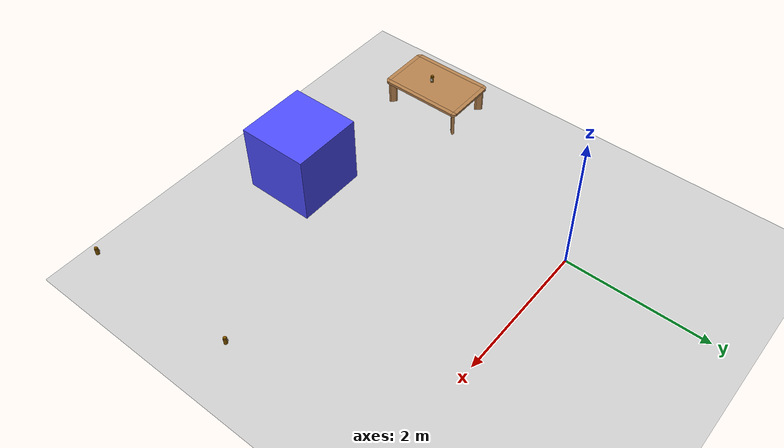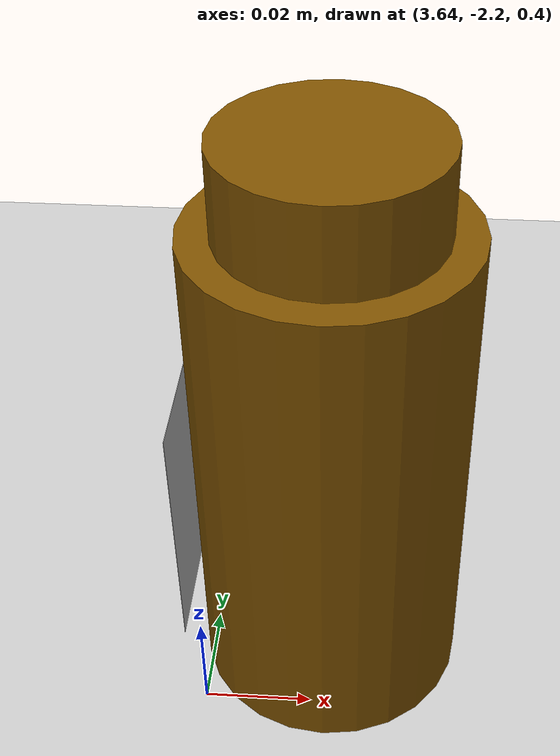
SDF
<sdf version="1.6">
 <world name="default">
  <model name="ground_plane">
   <static>1</static>
   <link name="link">
    <collision name="collision">
     <geometry><plane><normal>0 0 1</normal><size>100 100</size></plane></geometry>
     <surface><friction><ode><mu>100</mu><mu2>50</mu2></ode></friction></surface>
    </collision>
    <visual name="visual">
     <cast_shadows>0</cast_shadows>
     <geometry><plane><normal>0 0 1</normal><size>100 100</size></plane></geometry>
     <material>
      <script><uri>file://media/materials/scripts/gazebo.material</uri><name>Gazebo/Grey</name></script>
     </material>
    </visual>
   </link>
  </model>
  <model name="static_box_3">
   <link name="link">
    <inertial>
     <mass>100</mass>
     <inertia>
      <ixx>0.166667</ixx>
      <ixy>0</ixy>
      <ixz>0</ixz>
      <iyy>0.166667</iyy>
      <iyz>0</iyz>
      <izz>0.166667</izz>
     </inertia>
    </inertial>
    <visual name="visual">
     <geometry><box><size>1 1 1</size></box></geometry>
     <material>
      <script><name>Gazebo/Grey</name><uri>file://media/materials/scripts/gazebo.material</uri></script>
      <ambient>0.3 0.3 1 1</ambient>
      <diffuse>0.7 0.7 0.7 1</diffuse>
      <specular>0.01 0.01 0.01 1</specular>
      <emissive>0 0 0 1</emissive>
      <shader type="vertex"><normal_map>__default__</normal_map></shader>
     </material>
    </visual>
    <collision name="collision">
     <geometry><box><size>1 1 1</size></box></geometry>
     <surface>
      <friction>
       <ode><mu>1</mu><mu2>1</mu2><fdir1>0 0 0</fdir1><slip1>0</slip1><slip2>0</slip2></ode>
       <torsional>
        <coefficient>1</coefficient>
        <patch_radius>0</patch_radius>
        <surface_radius>0</surface_radius>
        <use_patch_radius>1</use_patch_radius>
        <ode><slip>0</slip></ode>
       </torsional>
      </friction>
      <bounce><restitution_coefficient>0</restitution_coefficient><threshold>1e+06</threshold></bounce>
      <contact>
       <collide_without_contact>0</collide_without_contact>
       <collide_without_contact_bitmask>1</collide_without_contact_bitmask>
       <collide_bitmask>1</collide_bitmask>
       <ode>
        <soft_cfm>0</soft_cfm>
        <soft_erp>0.2</soft_erp>
        <kp>1e+13</kp>
        <kd>1</kd>
        <max_vel>0.01</max_vel>
        <min_depth>0</min_depth>
       </ode>
       <bullet>
        <split_impulse>1</split_impulse>
        <split_impulse_penetration_threshold>-0.01</split_impulse_penetration_threshold>
        <soft_cfm>0</soft_cfm>
        <soft_erp>0.2</soft_erp>
        <kp>1e+13</kp>
        <kd>1</kd>
       </bullet>
      </contact>
     </surface>
    </collision>
   </link>
   <static>0</static>
   <pose>1.00471 -3.5172 0.499993 0 -1.2e-05 0.000648</pose>
  </model>
  <model name="kitchen_lowtable_clone_8">
   <link name="link">
    <inertial>
     <mass>10</mass>
     <inertia><ixx>1</ixx><ixy>0</ixy><ixz>0</ixz><iyy>1</iyy><iyz>0</iyz><izz>1</izz></inertia>
    </inertial>
    <visual name="center_board">
     <pose>0 0 0.38 0 -0 0</pose>
     <geometry><box><size>0.68 1.13 0.04</size></box></geometry>
     <material>
      <script><uri>model://base_materials/wood/scripts/wood.material</uri><name>base_materials/wood</name></script>
     </material>
    </visual>
    <collision name="collision_center_board">
     <pose>0 0 0.38 0 -0 0</pose>
     <geometry><box><size>0.68 1.13 0.04</size></box></geometry>
    </collision>
    <visual name="front_board">
     <pose>0.37 0 0.38 0 -0 0</pose>
     <geometry><box><size>0.06 1.13 0.04</size></box></geometry>
     <material>
      <script><uri>model://base_materials/wood/scripts/wood.material</uri><name>base_materials/wood</name></script>
     </material>
    </visual>
    <collision name="collision_front_board">
     <pose>0.37 0 0.38 0 -0 0</pose>
     <geometry><box><size>0.06 1.13 0.04</size></box></geometry>
    </collision>
    <visual name="back_board">
     <pose>-0.37 0 0.38 0 -0 0</pose>
     <geometry><box><size>0.06 1.13 0.04</size></box></geometry>
     <material>
      <script><uri>model://base_materials/wood/scripts/wood.material</uri><name>base_materials/wood</name></script>
     </material>
    </visual>
    <collision name="collision_back_board">
     <pose>-0.37 0 0.38 0 -0 0</pose>
     <geometry><box><size>0.06 1.13 0.04</size></box></geometry>
    </collision>
    <visual name="right_board">
     <pose>0 0.595 0.38 0 -0 0</pose>
     <geometry><box><size>0.68 0.06 0.04</size></box></geometry>
     <material>
      <script><uri>model://base_materials/wood/scripts/wood.material</uri><name>base_materials/wood</name></script>
     </material>
    </visual>
    <collision name="collision_right_board">
     <pose>0 0.595 0.38 0 -0 0</pose>
     <geometry><box><size>0.68 0.06 0.04</size></box></geometry>
    </collision>
    <visual name="left_board">
     <pose>0 -0.595 0.38 0 -0 0</pose>
     <geometry><box><size>0.68 0.06 0.04</size></box></geometry>
     <material>
      <script><uri>model://base_materials/wood/scripts/wood.material</uri><name>base_materials/wood</name></script>
     </material>
    </visual>
    <collision name="collision_left_board">
     <pose>0 -0.595 0.38 0 -0 0</pose>
     <geometry><box><size>0.68 0.06 0.04</size></box></geometry>
    </collision>
    <visual name="front_right_corner_board">
     <pose>0.34 0.565 0.38 0 -0 0</pose>
     <geometry><cylinder><radius>0.06</radius><length>0.039</length></cylinder></geometry>
     <material>
      <script><uri>model://base_materials/wood/scripts/wood.material</uri><name>base_materials/wood</name></script>
     </material>
    </visual>
    <collision name="collision_front_right_corner_board">
     <pose>0.34 0.565 0.38 0 -0 0</pose>
     <geometry><cylinder><radius>0.06</radius><length>0.039</length></cylinder></geometry>
    </collision>
    <visual name="front_left_corner_board">
     <pose>0.34 -0.565 0.38 0 -0 0</pose>
     <geometry><cylinder><radius>0.06</radius><length>0.039</length></cylinder></geometry>
     <material>
      <script><uri>model://base_materials/wood/scripts/wood.material</uri><name>base_materials/wood</name></script>
     </material>
    </visual>
    <collision name="collision_front_left_corner_board">
     <pose>0.34 -0.565 0.38 0 -0 0</pose>
     <geometry><cylinder><radius>0.06</radius><length>0.039</length></cylinder></geometry>
    </collision>
    <visual name="front_back_right_corner_board">
     <pose>-0.34 0.565 0.38 0 -0 0</pose>
     <geometry><cylinder><radius>0.06</radius><length>0.039</length></cylinder></geometry>
     <material>
      <script><uri>model://base_materials/wood/scripts/wood.material</uri><name>base_materials/wood</name></script>
     </material>
    </visual>
    <collision name="collision_back_right_corner_board">
     <pose>-0.34 0.565 0.38 0 -0 0</pose>
     <geometry><cylinder><radius>0.06</radius><length>0.039</length></cylinder></geometry>
    </collision>
    <visual name="front_back_left_corner_board">
     <pose>-0.34 -0.565 0.38 0 -0 0</pose>
     <geometry><cylinder><radius>0.06</radius><length>0.039</length></cylinder></geometry>
     <material>
      <script><uri>model://base_materials/wood/scripts/wood.material</uri><name>base_materials/wood</name></script>
     </material>
    </visual>
    <collision name="collision_back_left_corner_board">
     <pose>-0.34 -0.565 0.38 0 -0 0</pose>
     <geometry><cylinder><radius>0.06</radius><length>0.039</length></cylinder></geometry>
    </collision>
    <visual name="front_left_corner_frame1">
     <pose>0.345858 -0.57086 0.18 0 -0 0</pose>
     <geometry><cylinder><radius>0.02</radius><length>0.36</length></cylinder></geometry>
     <material>
      <script><uri>model://base_materials/wood/scripts/wood.material</uri><name>base_materials/wood</name></script>
     </material>
    </visual>
    <collision name="collision_front_left_corner_frame1">
     <pose>0.345858 -0.57086 0.18 0 -0 0</pose>
     <geometry><cylinder><radius>0.02</radius><length>0.36</length></cylinder></geometry>
    </collision>
    <visual name="front_left_corner_frame2">
     <pose>0.317574 -0.54257 0.18 0 -0 0.7854</pose>
     <geometry><box><size>0.04 0.08 0.36</size></box></geometry>
     <material>
      <script><uri>model://base_materials/wood/scripts/wood.material</uri><name>base_materials/wood</name></script>
     </material>
    </visual>
    <collision name="collision_front_left_corner_frame2">
     <pose>0.317574 -0.54257 0.18 0 -0 0.7854</pose>
     <geometry><box><size>0.04 0.08 0.36</size></box></geometry>
    </collision>
    <visual name="front_left_corner_frame3">
     <pose>0.289289 -0.51429 0.18 0 -0 0</pose>
     <geometry><cylinder><radius>0.02</radius><length>0.36</length></cylinder></geometry>
     <material>
      <script><uri>model://base_materials/wood/scripts/wood.material</uri><name>base_materials/wood</name></script>
     </material>
    </visual>
    <collision name="collision_front_left_corner_frame3">
     <pose>0.289289 -0.51429 0.18 0 -0 0</pose>
     <geometry><cylinder><radius>0.02</radius><length>0.36</length></cylinder></geometry>
    </collision>
    <visual name="front_right_corner_frame1">
     <pose>0.345858 0.57086 0.18 0 -0 0</pose>
     <geometry><cylinder><radius>0.02</radius><length>0.36</length></cylinder></geometry>
     <material>
      <script><uri>model://base_materials/wood/scripts/wood.material</uri><name>base_materials/wood</name></script>
     </material>
    </visual>
    <collision name="collision_front_right_corner_frame1">
     <pose>0.345858 0.57086 0.18 0 -0 0</pose>
     <geometry><cylinder><radius>0.02</radius><length>0.36</length></cylinder></geometry>
    </collision>
    <visual name="front_right_corner_frame2">
     <pose>0.317574 0.54257 0.18 0 0 -0.7854</pose>
     <geometry><box><size>0.04 0.08 0.36</size></box></geometry>
     <material>
      <script><uri>model://base_materials/wood/scripts/wood.material</uri><name>base_materials/wood</name></script>
     </material>
    </visual>
    <collision name="collision_front_right_corner_frame2">
     <pose>0.317574 0.54257 0.18 0 0 -0.7854</pose>
     <geometry><box><size>0.04 0.08 0.36</size></box></geometry>
    </collision>
    <visual name="front_right_corner_frame3">
     <pose>0.289289 0.51429 0.18 0 -0 0</pose>
     <geometry><cylinder><radius>0.02</radius><length>0.36</length></cylinder></geometry>
     <material>
      <script><uri>model://base_materials/wood/scripts/wood.material</uri><name>base_materials/wood</name></script>
     </material>
    </visual>
    <collision name="collision_front_right_corner_frame3">
     <pose>0.289289 0.51429 0.18 0 -0 0</pose>
     <geometry><cylinder><radius>0.02</radius><length>0.36</length></cylinder></geometry>
    </collision>
    <visual name="back_left_corner_frame1">
     <pose>-0.345858 -0.57086 0.18 0 -0 0</pose>
     <geometry><cylinder><radius>0.02</radius><length>0.36</length></cylinder></geometry>
     <material>
      <script><uri>model://base_materials/wood/scripts/wood.material</uri><name>base_materials/wood</name></script>
     </material>
    </visual>
    <collision name="collision_back_left_corner_frame1">
     <pose>-0.345858 -0.57086 0.18 0 -0 0</pose>
     <geometry><cylinder><radius>0.02</radius><length>0.36</length></cylinder></geometry>
    </collision>
    <visual name="back_left_corner_frame2">
     <pose>-0.317574 -0.54257 0.18 0 0 -0.7854</pose>
     <geometry><box><size>0.04 0.08 0.36</size></box></geometry>
     <material>
      <script><uri>model://base_materials/wood/scripts/wood.material</uri><name>base_materials/wood</name></script>
     </material>
    </visual>
    <collision name="collision_back_left_corner_frame2">
     <pose>-0.317574 -0.54257 0.18 0 0 -0.7854</pose>
     <geometry><box><size>0.04 0.08 0.36</size></box></geometry>
    </collision>
    <visual name="back_left_corner_frame3">
     <pose>-0.289289 -0.51429 0.18 0 -0 0</pose>
     <geometry><cylinder><radius>0.02</radius><length>0.36</length></cylinder></geometry>
     <material>
      <script><uri>model://base_materials/wood/scripts/wood.material</uri><name>base_materials/wood</name></script>
     </material>
    </visual>
    <collision name="collision_back_left_corner_frame3">
     <pose>-0.289289 -0.51429 0.18 0 -0 0</pose>
     <geometry><cylinder><radius>0.02</radius><length>0.36</length></cylinder></geometry>
    </collision>
    <visual name="back_right_corner_frame1">
     <pose>-0.345858 0.57086 0.18 0 -0 0</pose>
     <geometry><cylinder><radius>0.02</radius><length>0.36</length></cylinder></geometry>
     <material>
      <script><uri>model://base_materials/wood/scripts/wood.material</uri><name>base_materials/wood</name></script>
     </material>
    </visual>
    <collision name="collision_back_right_corner_frame1">
     <pose>-0.345858 0.57086 0.18 0 -0 0</pose>
     <geometry><cylinder><radius>0.02</radius><length>0.36</length></cylinder></geometry>
    </collision>
    <visual name="back_right_corner_frame2">
     <pose>-0.317574 0.54257 0.18 0 -0 0.7854</pose>
     <geometry><box><size>0.04 0.08 0.36</size></box></geometry>
     <material>
      <script><uri>model://base_materials/wood/scripts/wood.material</uri><name>base_materials/wood</name></script>
     </material>
    </visual>
    <collision name="collision_back_right_corner_frame2">
     <pose>-0.317574 0.54257 0.18 0 -0 0.7854</pose>
     <geometry><box><size>0.04 0.08 0.36</size></box></geometry>
    </collision>
    <visual name="back_right_corner_frame3">
     <pose>-0.289289 0.51429 0.18 0 -0 0</pose>
     <geometry><cylinder><radius>0.02</radius><length>0.36</length></cylinder></geometry>
     <material>
      <script><uri>model://base_materials/wood/scripts/wood.material</uri><name>base_materials/wood</name></script>
     </material>
    </visual>
    <collision name="collision_back_right_corner_frame3">
     <pose>-0.289289 0.51429 0.18 0 -0 0</pose>
     <geometry><cylinder><radius>0.02</radius><length>0.36</length></cylinder></geometry>
    </collision>
    <velocity_decay><linear>0</linear><angular>0</angular></velocity_decay>
   </link>
   <static>1</static>
   <pose>-1.33255 -3.07877 0 0 -0 0</pose>
  </model>
  <model name="bottle_clone_2_clone_0">
   <link name="link">
    <inertial>
     <mass>0.05</mass>
     <inertia><ixx>0.00058</ixx><ixy>0</ixy><ixz>0</ixz><iyy>0.00058</iyy><iyz>0</iyz><izz>0.00016</izz></inertia>
    </inertial>
    <visual name="top">
     <pose>0 0 0.0555 0 -0 0</pose>
     <geometry><cylinder><radius>0.019</radius><length>0.016</length></cylinder></geometry>
     <material>
      <ambient>1 0.647 0 1</ambient>
      <diffuse>0.5 0.3235 0 1</diffuse>
      <specular>0.1 0.1 0.1 1</specular>
      <emissive>0 0 0 0</emissive>
     </material>
    </visual>
    <collision name="collision_top">
     <pose>0 0 0.0555 0 -0 0</pose>
     <geometry><cylinder><radius>0.019</radius><length>0.016</length></cylinder></geometry>
     <surface>
      <bounce><restitution_coefficient>0.2</restitution_coefficient><threshold>0</threshold></bounce>
      <contact><ode><kp>10000</kp><max_vel>10</max_vel></ode></contact>
     </surface>
    </collision>
    <visual name="bottom">
     <geometry><cylinder><radius>0.0245</radius><length>0.095</length></cylinder></geometry>
     <material>
      <ambient>1 0.7 0.3 1</ambient>
      <diffuse>0.5 0.3235 0 1</diffuse>
      <specular>0.1 0.1 0.1 1</specular>
      <emissive>0 0 0 0</emissive>
     </material>
    </visual>
    <collision name="collision_bottom">
     <geometry><cylinder><radius>0.0245</radius><length>0.095</length></cylinder></geometry>
     <surface>
      <bounce><restitution_coefficient>0.2</restitution_coefficient><threshold>0</threshold></bounce>
      <contact><ode><kp>100000</kp><max_vel>10</max_vel></ode></contact>
     </surface>
    </collision>
    <velocity_decay><linear>0</linear><angular>0</angular></velocity_decay>
    <visual name="marker_4000">
     <pose>0.0245 0 0 0 1.57 3.141</pose>
     <geometry><box><size>0.045 0.045 0.0001</size></box></geometry>
     <material>
      <script>
       <uri>model://marker/4000/scripts</uri>
       <uri>model://marker/4000/textures</uri>
       <name>Marker/4000</name>
      </script>
     </material>
    </visual>
   </link>
   <static>0</static>
   <pose>-1.33067 -3.15166 0.4475 5e-06 -6e-06 0.03372</pose>
  </model>
  <model name="bottle_clone_2_clone_2_clone">
   <link name="link">
    <inertial>
     <mass>0.05</mass>
     <inertia><ixx>0.00058</ixx><ixy>0</ixy><ixz>0</ixz><iyy>0.00058</iyy><iyz>0</iyz><izz>0.00016</izz></inertia>
    </inertial>
    <visual name="top">
     <pose>0 0 0.0555 0 -0 0</pose>
     <geometry><cylinder><radius>0.019</radius><length>0.016</length></cylinder></geometry>
     <material>
      <ambient>1 0.647 0 1</ambient>
      <diffuse>0.5 0.3235 0 1</diffuse>
      <specular>0.1 0.1 0.1 1</specular>
      <emissive>0 0 0 0</emissive>
     </material>
    </visual>
    <collision name="collision_top">
     <pose>0 0 0.0555 0 -0 0</pose>
     <geometry><cylinder><radius>0.019</radius><length>0.016</length></cylinder></geometry>
     <surface>
      <bounce><restitution_coefficient>0.2</restitution_coefficient><threshold>0</threshold></bounce>
      <contact><ode><kp>10000</kp><max_vel>10</max_vel></ode></contact>
     </surface>
    </collision>
    <visual name="bottom">
     <geometry><cylinder><radius>0.0245</radius><length>0.095</length></cylinder></geometry>
     <material>
      <ambient>1 0.7 0.3 1</ambient>
      <diffuse>0.5 0.3235 0 1</diffuse>
      <specular>0.1 0.1 0.1 1</specular>
      <emissive>0 0 0 0</emissive>
     </material>
    </visual>
    <collision name="collision_bottom">
     <geometry><cylinder><radius>0.0245</radius><length>0.095</length></cylinder></geometry>
     <surface>
      <bounce><restitution_coefficient>0.2</restitution_coefficient><threshold>0</threshold></bounce>
      <contact><ode><kp>100000</kp><max_vel>10</max_vel></ode></contact>
     </surface>
    </collision>
    <velocity_decay><linear>0</linear><angular>0</angular></velocity_decay>
    <visual name="marker_4000">
     <pose>0.0245 0 0 0 1.57 3.141</pose>
     <geometry><box><size>0.045 0.045 0.0001</size></box></geometry>
     <material>
      <script>
       <uri>model://marker/4000/scripts</uri>
       <uri>model://marker/4000/textures</uri>
       <name>Marker/4000</name>
      </script>
     </material>
    </visual>
   </link>
   <static>0</static>
   <pose>3.66296 -2.18296 0.4475 7e-06 -6e-06 3.13829</pose>
  </model>
  <model name="bottle_clone_2_clone_2_clone_0">
   <link name="link">
    <inertial>
     <mass>0.05</mass>
     <inertia><ixx>0.00058</ixx><ixy>0</ixy><ixz>0</ixz><iyy>0.00058</iyy><iyz>0</iyz><izz>0.00016</izz></inertia>
    </inertial>
    <visual name="top">
     <pose>0 0 0.0555 0 -0 0</pose>
     <geometry><cylinder><radius>0.019</radius><length>0.016</length></cylinder></geometry>
     <material>
      <ambient>1 0.647 0 1</ambient>
      <diffuse>0.5 0.3235 0 1</diffuse>
      <specular>0.1 0.1 0.1 1</specular>
      <emissive>0 0 0 0</emissive>
     </material>
    </visual>
    <collision name="collision_top">
     <pose>0 0 0.0555 0 -0 0</pose>
     <geometry><cylinder><radius>0.019</radius><length>0.016</length></cylinder></geometry>
     <surface>
      <bounce><restitution_coefficient>0.2</restitution_coefficient><threshold>0</threshold></bounce>
      <contact><ode><kp>10000</kp><max_vel>10</max_vel></ode></contact>
     </surface>
    </collision>
    <visual name="bottom">
     <geometry><cylinder><radius>0.0245</radius><length>0.095</length></cylinder></geometry>
     <material>
      <ambient>1 0.7 0.3 1</ambient>
      <diffuse>0.5 0.3235 0 1</diffuse>
      <specular>0.1 0.1 0.1 1</specular>
      <emissive>0 0 0 0</emissive>
     </material>
    </visual>
    <collision name="collision_bottom">
     <geometry><cylinder><radius>0.0245</radius><length>0.095</length></cylinder></geometry>
     <surface>
      <bounce><restitution_coefficient>0.2</restitution_coefficient><threshold>0</threshold></bounce>
      <contact><ode><kp>100000</kp><max_vel>10</max_vel></ode></contact>
     </surface>
    </collision>
    <velocity_decay><linear>0</linear><angular>0</angular></velocity_decay>
    <visual name="marker_4000">
     <pose>0.0245 0 0 0 1.57 3.141</pose>
     <geometry><box><size>0.045 0.045 0.0001</size></box></geometry>
     <material>
      <script>
       <uri>model://marker/4000/scripts</uri>
       <uri>model://marker/4000/textures</uri>
       <name>Marker/4000</name>
      </script>
     </material>
    </visual>
   </link>
   <static>0</static>
   <pose>3.73342 -4.33136 0.4475 1.2e-05 -1e-06 3.13829</pose>
  </model>
 </world>
</sdf>
